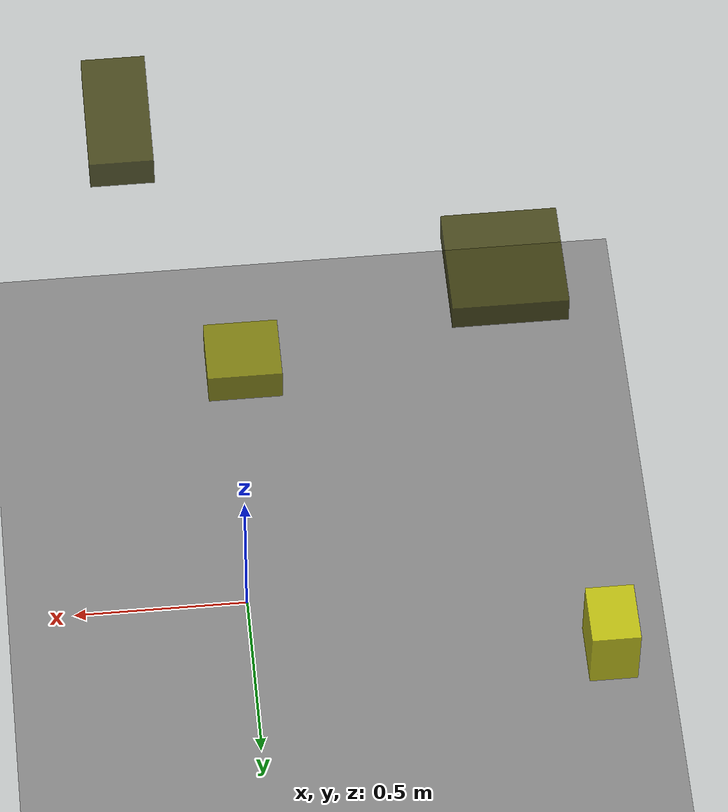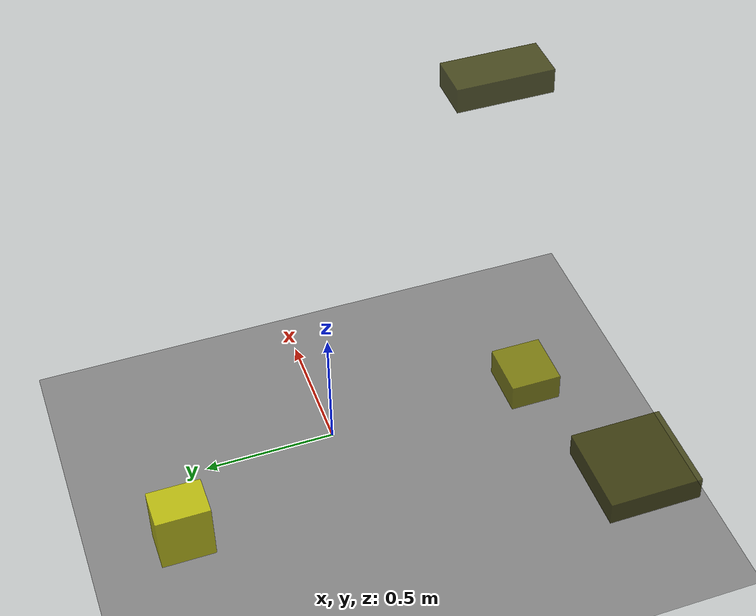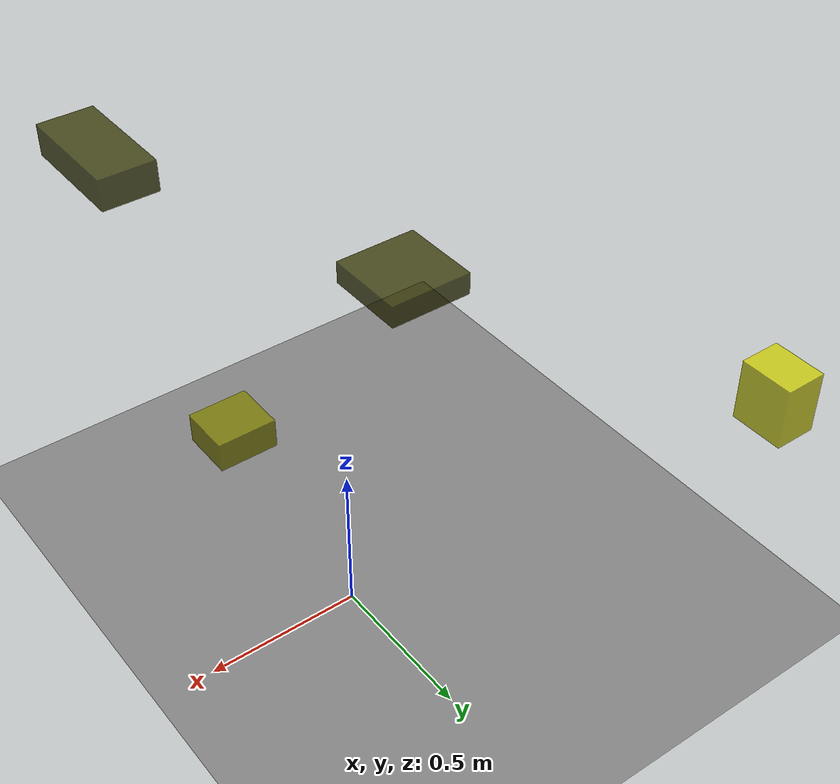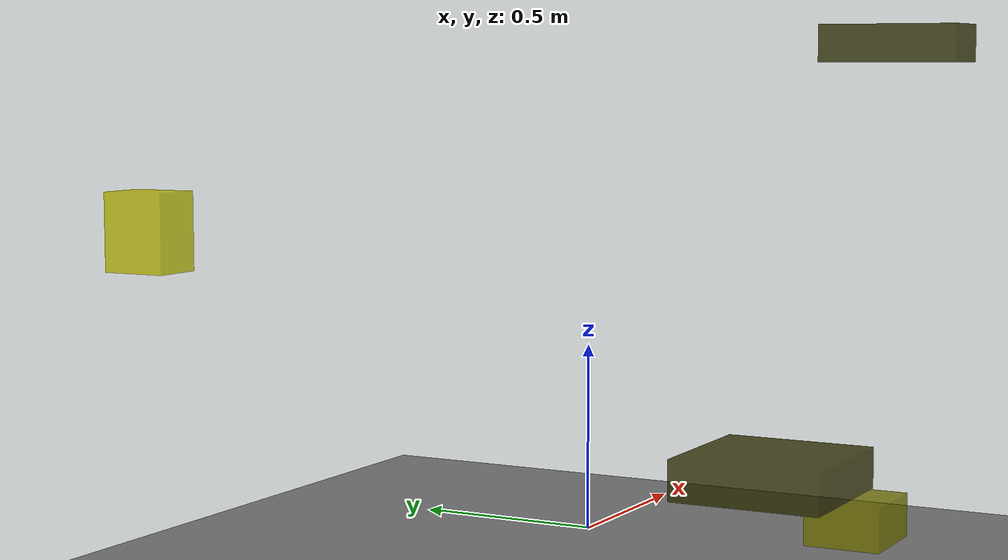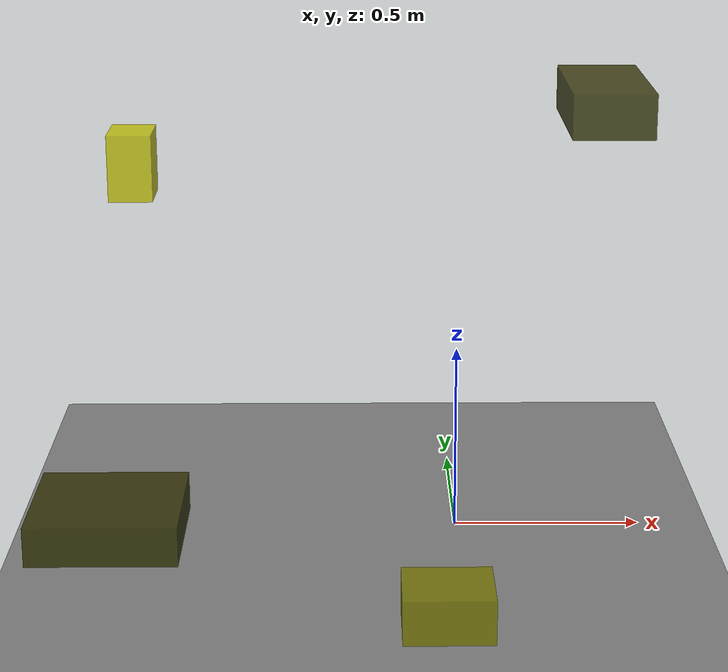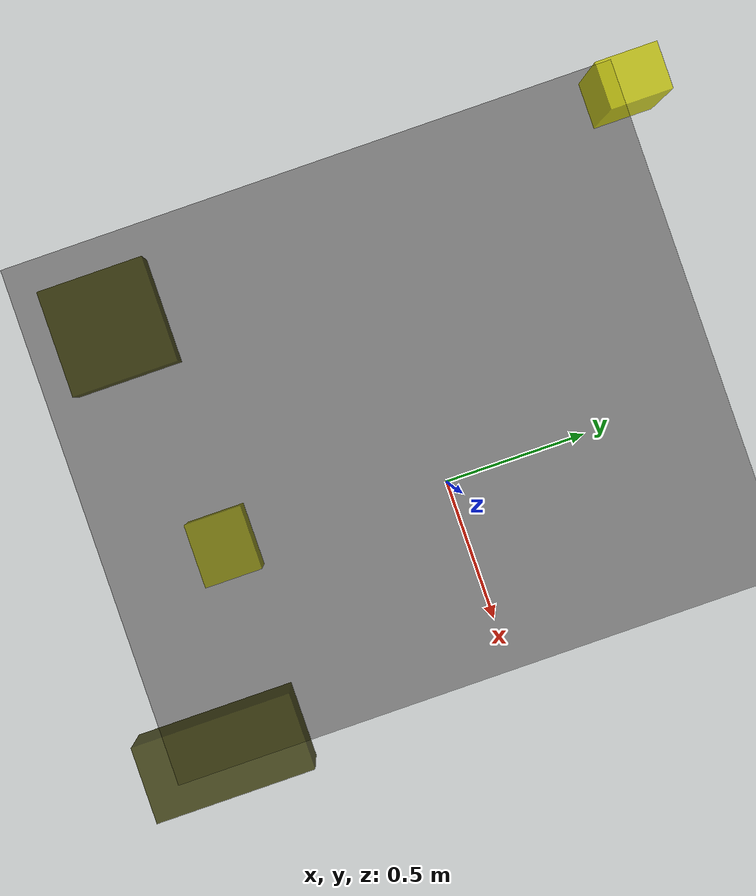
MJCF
<?xml version="1.0"?>
<mujoco model="obstacle_scene">
  <compiler angle="radian" coordinate="local"/>
  <option timestep="0.001" gravity="0 0 -9.81"/>

  <asset>
    <material name="obstacle_mat" rgba="0.8 0.8 0.0 0.8"/>
    <material name="ground_mat" rgba="0.5 0.5 0.5 1"/>
  </asset>

  <worldbody>
    <!-- Ground plane -->
    <geom name="ground" type="plane" size="3 3 0.1" material="ground_mat"/>

    <!-- Obstacles -->
    <body name="obstacle_0" pos="0.279412 -0.756865 1.307363">
      <geom name="obs_0" type="box" size="0.088082 0.184487 0.048902" rgba="0.2 0.2 0.0 0.8"/>
    </body>
    <body name="obstacle_1" pos="-0.052686 -0.778265 0.113696">
      <geom name="obs_1" type="box" size="0.109175 0.098477 0.056129" rgba="0.5 0.5 0.0 0.8"/>
    </body>
    <body name="obstacle_2" pos="-0.928056 0.736984 0.845414">
      <geom name="obs_2" type="box" size="0.064974 0.084472 0.098438" rgba="0.8 0.8 0.0 0.8"/>
    </body>
    <body name="obstacle_3" pos="-0.830426 -0.856648 0.372428">
      <geom name="obs_3" type="box" size="0.170092 0.170278 0.045821" rgba="0.2 0.2 0.0 0.8"/>
    </body>
  </worldbody>
</mujoco>
